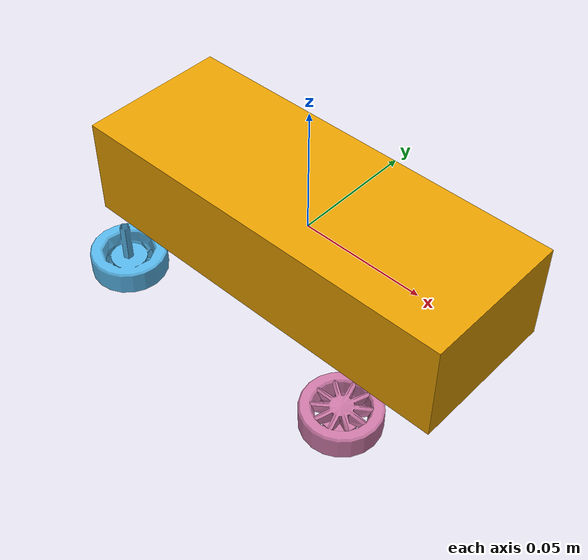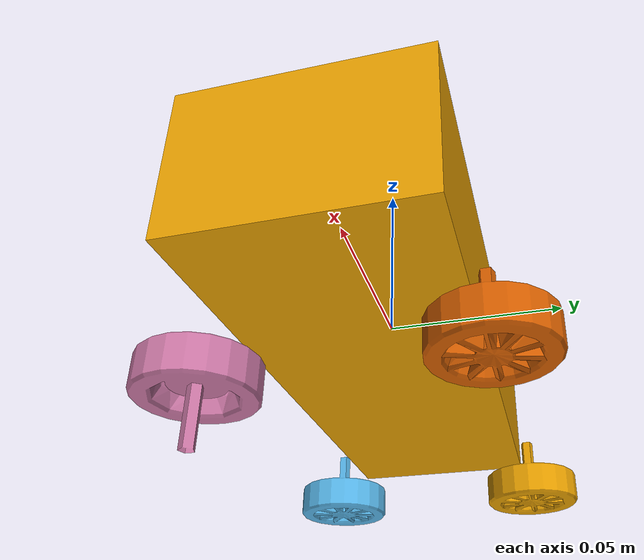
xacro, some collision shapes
<?xml version="1.0"?>

<robot name="quadrotor"
    xmlns:sensor="http://playerstage.sourceforge.net/gazebo/xmlschema/#sensor"
    xmlns:controller="http://playerstage.sourceforge.net/gazebo/xmlschema/#controller"
    xmlns:interface="http://playerstage.sourceforge.net/gazebo/xmlschema/#interface"
    xmlns:xacro="http://www.ros.org/wiki/xacro"
    >

    <!-- Included URDF Files -->
    <xacro:include filename="$(find CATEC_ugv)/urdf/car_base_golf_yellow.urdf.xacro" />

</robot>

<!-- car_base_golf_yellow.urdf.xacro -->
<robot
    xmlns:gazebo="http://playerstage.sourceforge.net/gazebo/xmlschema/#gz"
    xmlns:model="http://playerstage.sourceforge.net/gazebo/xmlschema/#model"
    xmlns:sensor="http://playerstage.sourceforge.net/gazebo/xmlschema/#sensor"
    xmlns:body="http://playerstage.sourceforge.net/gazebo/xmlschema/#body"
    xmlns:geom="http://playerstage.sourceforge.net/gazebo/xmlschema/#geom"
    xmlns:joint="http://playerstage.sourceforge.net/gazebo/xmlschema/#joint"
    xmlns:controller="http://playerstage.sourceforge.net/gazebo/xmlschema/#controller"
    xmlns:interface="http://playerstage.sourceforge.net/gazebo/xmlschema/#interface"
    xmlns:rendering="http://playerstage.sourceforge.net/gazebo/xmlschema/#rendering"
    xmlns:physics="http://playerstage.sourceforge.net/gazebo/xmlschema/#physics"
    xmlns:xacro="http://www.ros.org/wiki/xacro"
    name="ackermann"
    >

    <property name="M_PI" value="3.1415926535897931" />
    <property name="SCALE" value="0.4000000000000000" />

    <material name="Red">
      <color rgba="1.0 0 0 1.0"/>
    </material>
    <material name="Green">
      <color rgba="0 1.0 0 1.0"/>
    </material>
    <material name="Blue">
      <color rgba="0 0 1.0 0.5"/>
    </material>
    <!-- Main body -->
    <link name="base_link">
        <inertial>
            <mass value="1.8" />
            <origin xyz="0 0 -1.75" />
            <inertia  ixx="0.4" ixy="0.0"  ixz="0.0"  iyy="0.4"  iyz="0.0"  izz="0.4" />
        </inertial>
        <visual>
            <origin xyz="-0.004 0 -0.048" rpy="0 0 -1.57" />
            <geometry>
                <mesh filename="package://CATEC_ugv/Media/models/cars/Golf/golf_yellow.dae" scale="0.045 0.045 0.045"/>
            </geometry>
        </visual>
        <collision>
            <origin xyz="0 0 0" rpy="0 0 0" />
            <geometry>
                <box size="${SCALE*0.4} ${SCALE*0.15} ${SCALE*0.1}" />
            </geometry>
        </collision>
    </link>

    <!-- Front link of Ackermann -->
    <joint name="front_joint" type="fixed">
      <parent link="base_link"/>
      <child link="front_link"/>
      <origin xyz="${SCALE*0.16} ${SCALE*0.0} ${SCALE*(-0.09)}"/>
    </joint>
    <link name="front_link">
        <inertial>
            <mass value="0.01" />
            <origin xyz="0 0 0" />
            <inertia  ixx="0.01" ixy="0.0"  ixz="0.0"  iyy="0.01"  iyz="0.0"  izz="0.01" />
        </inertial>
        <visual>
            <geometry>
                <box size="${SCALE*0.00} ${SCALE*0.00} ${SCALE*0.00}" />
            </geometry>
            <material name="Red"/>
        </visual>
        <collision>
            <geometry>
                <box size="${SCALE*0.02} ${SCALE*0.15} ${SCALE*0.005}" />
            </geometry>
        </collision>
    </link>
    <gazebo reference="front_link">
        <material>Gazebo/Red</material>
    </gazebo>

    <!-- a link aligned with the steer direction -->
    <joint name="steer_joint" type="revolute" >
        <limit lower="-0.6" upper="0.6" effort="100" velocity="10" />
        <axis xyz="0 0 1" />
        <parent link="front_link" />
        <child link="steer_link" />
        <origin xyz="0.0 0.0 0.0" rpy="0 0 0" />
    </joint>
    <link name="steer_link">
        <inertial>
            <mass value="0.01" />
            <origin xyz="0 0 0" />
            <inertia  ixx="0.01" ixy="0.0"  ixz="0.0"  iyy="0.01"  iyz="0.0"  izz="0.01" />
        </inertial>
        <visual>
            <origin xyz="${SCALE*(-0.02)} 0 0" />
            <geometry>
                <box size="${SCALE*0.00} ${SCALE*0.00} ${SCALE*0.00}" />
            </geometry>
            <material name="Red"/>
        </visual>
        <collision>
            <origin xyz="${SCALE*(-0.02)} 0 0" />
            <geometry>
                <box size="${SCALE*0.04} ${SCALE*0.02} ${SCALE*0.005}" />
            </geometry>
        </collision>
    </link>
    <gazebo reference="steer_link">
        <material>Gazebo/Red</material>
    </gazebo>

    <!-- the left Ackermann bar -->
    <joint name="front_left_bar_joint" type="revolute" >
        <limit lower="-0.6" upper="0.6" effort="100" velocity="10" />
        <axis xyz="0 0 1" />
        <parent link="front_link" />
        <child link="front_left_bar_link" />
        <origin xyz="0.0 ${SCALE*0.06} 0.0" rpy="0 0 0" />
    </joint>
    <link name="front_left_bar_link">
        <inertial>
            <mass value="0.01" />
            <origin xyz="0 0 0" />
            <inertia  ixx="0.01" ixy="0.0"  ixz="0.0"  iyy="0.01"  iyz="0.0"  izz="0.01" />
        </inertial>
        <visual>
            <origin xyz="${SCALE*(-0.02)} 0 0" />
            <geometry>
                <box size="${SCALE*0.00} ${SCALE*0.00} ${SCALE*0.00}" />
            </geometry>
            <material name="Red"/>
        </visual>
        <collision>
            <origin xyz="${SCALE*(-0.02)} 0 0" />
            <geometry>
                <box size="${SCALE*0.04} ${SCALE*0.02} ${SCALE*0.005}" />
            </geometry>
        </collision>
    </link>
    <gazebo reference="front_left_bar_link">
        <material>Gazebo/Red</material>
    </gazebo>

    <!-- the right Ackermann bar -->
    <joint name="front_right_bar_joint" type="revolute" >
        <limit lower="-0.6" upper="0.6" effort="100" velocity="10" />
        <axis xyz="0 0 1" />
        <parent link="front_link" />
        <child link="front_right_bar_link" />
        <origin xyz="0 ${SCALE*(-0.06)} 0.0" rpy="0 0 0" />
    </joint>
    <link name="front_right_bar_link">
        <inertial>
            <mass value="0.01" />
            <origin xyz="0 0 0" />
            <inertia  ixx="0.01" ixy="0.0"  ixz="0.0"  iyy="0.01"  iyz="0.0"  izz="0.01" />
        </inertial>
        <visual>
            <origin xyz="${SCALE*(-0.02)} 0 0" />
            <geometry>
                <box size="${SCALE*0.00} ${SCALE*0.00} ${SCALE*0.00}" />
            </geometry>
            <material name="Red"/>
        </visual>
        <collision>
            <origin xyz="${SCALE*(-0.02)} 0 0" />
            <geometry>
                <box size="${SCALE*0.04} ${SCALE*0.02} ${SCALE*0.005}" />
            </geometry>
        </collision>
    </link>
    <gazebo reference="front_right_bar_link">
        <material>Gazebo/Red</material>
    </gazebo>

   <!-- the front left wheel -->
    <joint name="front_left_wheel_joint" type="continuous" >
        <axis xyz="0 1 0" />
        <parent link="front_left_bar_link" />
        <child link="front_left_wheel_link" />
        <origin xyz="-0.017 ${(SCALE*0.04)-0.006} 0.002" rpy="0 0 0" />
    </joint>
    <link name="front_left_wheel_link">
        <inertial>
            <mass value="0.01" />
            <origin xyz="0 0 0" />
            <inertia  ixx="0.01" ixy="0.0"  ixz="0.0"  iyy="0.01"  iyz="0.0"  izz="0.01" />
        </inertial>
        <visual>
            <origin xyz="0 0.0 0.0" rpy="0 ${-M_PI/2} 0" />
            <geometry>
                <mesh filename="package://CATEC_ugv/Media/models/cars/Lincoln/wheelCentered.dae" scale="0.02 0.02 0.02"/>
            </geometry>
        </visual>
        <collision>
            <origin xyz="0 0 0" rpy="${M_PI/2} 0 0" />
            <geometry>
                <cylinder radius="${SCALE*0.036}" length="0.02" />
            </geometry>
        </collision>
    </link>

   <!-- the front right wheel -->
    <joint name="front_right_wheel_joint" type="continuous" >
        <axis xyz="0 1 0" />
        <parent link="front_right_bar_link" />
        <child link="front_right_wheel_link" />
        <origin xyz="-0.017 ${(SCALE*(-0.04))+0.006} 0.002" rpy="0 0 0" />
    </joint>
    <link name="front_right_wheel_link">
        <inertial>
            <mass value="0.01" />
            <origin xyz="0 0 0" />
            <inertia  ixx="0.01" ixy="0.0"  ixz="0.0"  iyy="0.01"  iyz="0.0"  izz="0.01" />
        </inertial>
        <visual> <!-- longitudinal altura  -->
        <origin xyz="0.000 0.0 0.0" rpy="0 ${M_PI/2} 0" />
        <geometry>
            <mesh filename="package://CATEC_ugv/Media/models/cars/Lincoln/wheelCentered.dae" scale="0.02 0.02 0.02"/>
            </geometry>
        </visual>
        <collision>
            <origin xyz="0 0 0" rpy="${M_PI/2} 0 0" />
            <geometry>
                <cylinder radius="${SCALE*0.036}" length="0.02" />
            </geometry>
        </collision>
    </link>
    <gazebo reference="front_right_wheel_link">
        <turnGravityOff>false</turnGravityOff>
    </gazebo>

   <!-- the Ackerman bar -->
    <joint name="ackermann_joint" type="revolute" >
        <limit lower="-0.6" upper="0.6" effort="100" velocity="10" />
        <axis xyz="0 0 1" />
        <parent link="steer_link" />
        <child link="ackermann_bar_link" />
        <origin xyz="${SCALE*(-0.04)} 0 0" rpy="0 0 0" />
    </joint>
    <link name="ackermann_bar_link">
        <inertial>
            <mass value="0.01" />
            <origin xyz="0 0 0" />
            <inertia  ixx="0.01" ixy="0.0"  ixz="0.0"  iyy="0.01"  iyz="0.0"  izz="0.01" />
        </inertial>
        <visual>
            <geometry>
                <box size="${SCALE*0.00} ${SCALE*0.0} ${SCALE*0.00}" />
            </geometry>
            <material name="Red"/>
        </visual>
        <collision>
            <geometry>
                <box size="${SCALE*0.02} ${SCALE*0.15} ${SCALE*0.01}" />
            </geometry>
        </collision>
    </link>
    <gazebo reference="front_link">
        <material>Gazebo/Red</material>
    </gazebo>
    <gazebo reference="ackermann_bar_link">
        <material>Gazebo/Blue</material>
    </gazebo>

   <!-- Gazebo Ackermann loop joints -->
    <gazebo>
      <joint:hinge name="ackermann_left_bar_joint">
        <body1>ackermann_bar_link</body1>
        <body2>front_left_bar_link</body2>
        <anchor>ackermann_bar_link</anchor>
        <axis>0 0 1</axis>
        <anchorOffset>0 ${SCALE*0.06} 0</anchorOffset>
      </joint:hinge>
    </gazebo>
    <gazebo>
      <joint:hinge name="ackermann_right_bar_joint">
        <body1>ackermann_bar_link</body1>
        <body2>front_right_bar_link</body2>
        <anchor>ackermann_bar_link</anchor>
        <axis>0 0 1</axis>
        <anchorOffset>0 ${SCALE*(-0.06)} 0</anchorOffset>
      </joint:hinge>
    </gazebo>

   <!-- the back left wheel -->
    <joint name="back_left_wheel_joint" type="continuous" >
        <axis xyz="0 1 0" />
        <parent link="base_link" />
        <child link="back_left_wheel_link" />
        <origin xyz="${(SCALE*(-0.16))+0.001} ${(SCALE*0.1)-0.006} ${(SCALE*(-0.095))+0.003}" rpy="0 0 0" />
    </joint>
    <link name="back_left_wheel_link">
        <inertial>
            <mass value="0.01" />
            <origin xyz="0 0 0" />
            <inertia  ixx="0.01" ixy="0.0"  ixz="0.0"  iyy="0.01"  iyz="0.0"  izz="0.01" />
        </inertial>
        <visual>
        <origin xyz="0.0 0.0 0.0" rpy="0 ${-M_PI/2} 0" />
        <geometry>
            <mesh filename="package://CATEC_ugv/Media/models/cars/Lincoln/wheelCentered.dae" scale="0.02 0.02 0.02"/>
            </geometry>
        </visual>
        <collision>
            <origin xyz="0 0 0" rpy="${M_PI/2} 0 0" />
            <geometry>
                <cylinder radius="${SCALE*0.036}" length="0.02" />
            </geometry>
        </collision>
    </link>

   <!-- the back right wheel -->
    <joint name="back_right_wheel_joint" type="continuous" >
        <axis xyz="0 1 0" />
        <parent link="base_link" />
        <child link="back_right_wheel_link" />
        <origin xyz="${(SCALE*(-0.16))+0.001} ${(SCALE*(-0.1))+0.006} ${(SCALE*(-0.095))+0.003}" rpy="0 0 0" />
    </joint>
    <link name="back_right_wheel_link">
        <inertial>
            <mass value="0.01" />
            <origin xyz="0 0 0" />
            <inertia  ixx="0.01" ixy="0.0"  ixz="0.0"  iyy="0.01"  iyz="0.0"  izz="0.01" />
        </inertial>
        <visual>
        <origin xyz="0.0 0.0 0.0" rpy="0 ${-M_PI/2} 0" />
        <geometry>
            <mesh filename="package://CATEC_ugv/Media/models/cars/Lincoln/wheelCentered.dae" scale="0.02 0.02 0.02"/>
            </geometry>
        </visual>
        <collision>
            <origin xyz="0 0 0" rpy="${-M_PI/2} 0 0" />
            <geometry>
                <cylinder radius="${SCALE*0.036}" length="0.02" />
            </geometry>
        </collision>
    </link>

    <!-- Ackermann plugin -->
    <gazebo>
      <controller:ackermann_plugin name="ackermann_controller"
                    plugin="libackermann_plugin.so">
   <alwaysOn>true</alwaysOn>
   <update>100</update>
   <updateRate>100.0</updateRate>
   <leftJoint>back_left_wheel_joint</leftJoint>
   <rightJoint>back_right_wheel_joint</rightJoint>
   <steerJoint>steer_joint</steerJoint>
   <wheelSeparationWidth>${SCALE*0.16}</wheelSeparationWidth>
   <wheelSeparationLength>${SCALE*0.45}</wheelSeparationLength>
        <!-- Shouldn't this wheel diameter include the tire?
             (40 cm is about right for the bare rim)
          -->
   <wheelDiameter>${SCALE*0.041}</wheelDiameter>
   <driveTorque>5</driveTorque>
   <steerTorque>5</steerTorque>
   <interface:position name="position_iface_0" />
   <robotNamespace>/</robotNamespace>
   <topicName>pilot/drive</topicName>
      </controller:ackermann_plugin>

     <canonicalBody>base_footprint</canonicalBody>
    </gazebo>
</robot>
